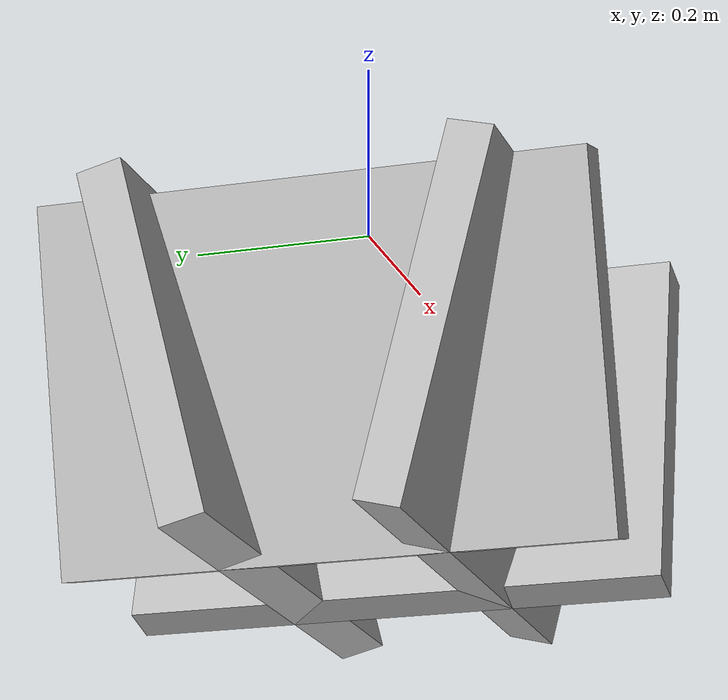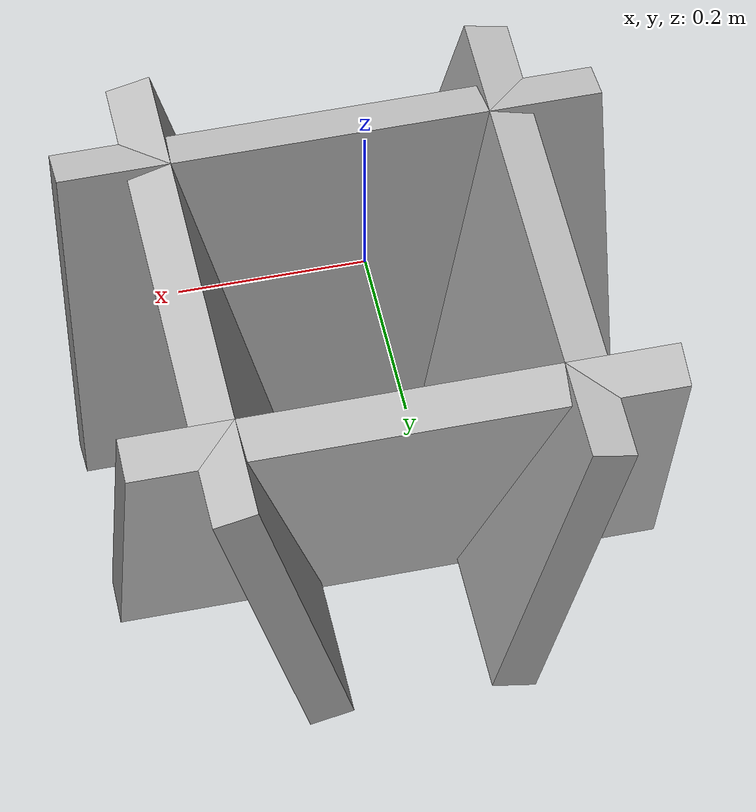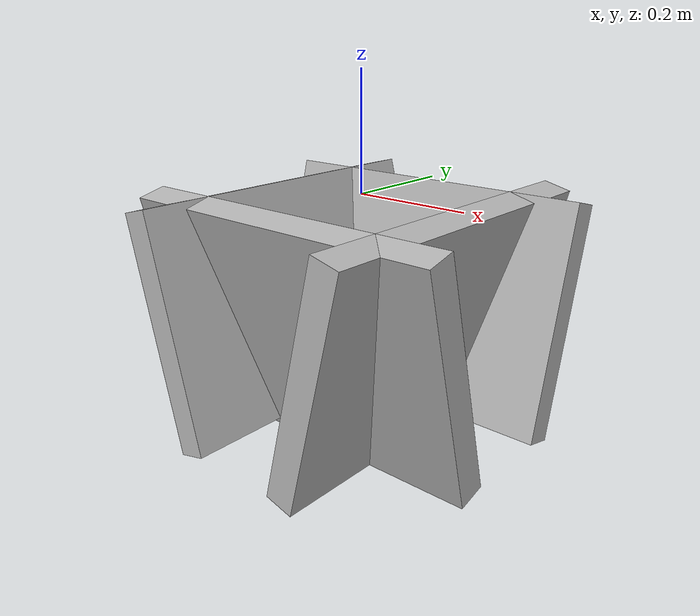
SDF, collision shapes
<?xml version="1.0"?>
<sdf version="1.7">
  <model name="hoop_model">
    <!--
    Axes:
      +X - Pointing towards front (slope)
      +Y - Pointing to left side
      +Z - Up
    Origin:
      (0, 0, 0) at the center bottom of the bin
    -->
    <link name="base_link_hoop">
      <inertial>
        <mass>0.603000</mass>
        <inertia>
          <ixx>0.002009</ixx>
          <ixy>0</ixy>
          <ixz>0</ixz>
          <iyy>0.000633</iyy>
          <iyz>0</iyz>
          <izz>0.002302</izz>
        </inertia>
      </inertial>
      <visual name="base_link_hoop">
        <pose>-0.43 0.0 -1.2 1.57079632679 0.0 1.57079632679</pose>
        <geometry>
          <mesh>
            <uri>basketball_hoop.obj</uri>
          </mesh>
        </geometry>
      </visual>
      <collision name="slope_netback">
        <pose>-0.15 0.0 -0.2 0 -0.25 0</pose>
        <geometry>
          <box>
            <size>0.05 0.6 0.4</size>
          </box>
        </geometry>
      </collision>
      <collision name="slope_netfront">
        <pose>0.15 0.0 -0.2 0 0.25 0</pose>
        <geometry>
          <box>
            <size>0.05 0.6 0.4</size>
          </box>
        </geometry>
      </collision>
      <collision name="slope_netleft">
        <pose>0 -0.15 -0.2 0.25 0 0</pose>
        <geometry>
          <box>
            <size>0.6 0.05 0.4</size>
          </box>
        </geometry>
      </collision>
      <collision name="slope_netright">
        <pose>0 0.15 -0.2 -0.25 0 0</pose>
        <geometry>
          <box>
            <size>0.6 0.05 0.4</size>
          </box>
        </geometry>
      </collision>
    </link>
  </model>
</sdf>
